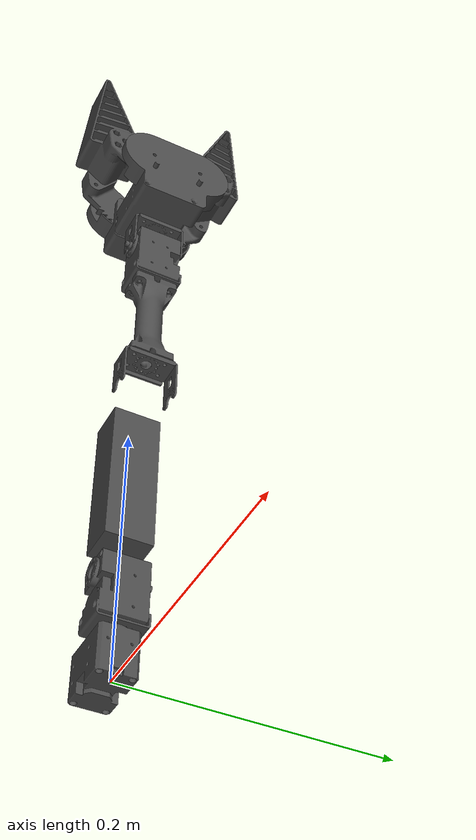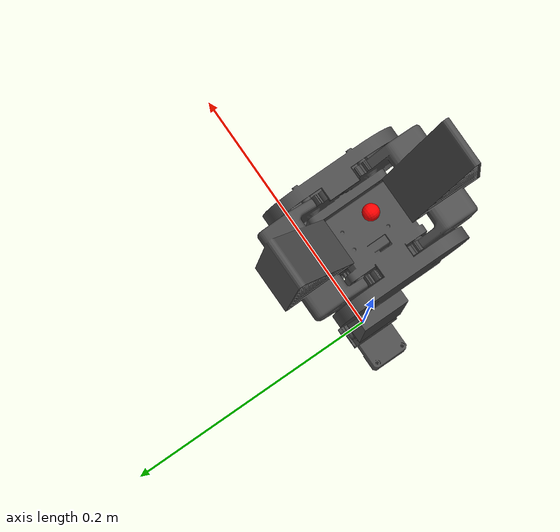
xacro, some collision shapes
<?xml version="1.0"?>

<robot name="$(arg robot_name)" xmlns:xacro="http://ros.org/wiki/xacro">
  <xacro:include filename="$(find tuda_turtlebot3_arm_description)/urdf/tuda_turtlebot3_arm.urdf.xacro" />

  <xacro:arg name="parent_link" default="base_link" />

  <link name="$(arg parent_link)" />

  <xacro:manipulator_arm_macro parent="$(arg parent_link)">
    <origin xyz="0.0 0.0 0.0" rpy="0.0 0.0 0.0" />
  </xacro:manipulator_arm_macro>
</robot>

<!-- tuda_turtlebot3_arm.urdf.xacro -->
<robot
  xmlns:controller="http://playerstage.sourceforge.net/gazebo/xmlschema/#controller"
  xmlns:interface="http://ros.org/wiki/xacro"
  xmlns:sensor="http://playerstage.sourceforge.net/gazebo/xmlschema/#sensor"
  xmlns:xacro="http://ros.org/wiki/xacro">

  <xacro:include filename="$(find tuda_turtlebot3_arm_description)/urdf/tuda_turtlebot3_arm.gazebo.xacro" />

  <xacro:property name="XM430_W350_max_effort" value="4.1" />
  <xacro:property name="XM430_W350_max_velocity" value="${46 * 2*pi/60}" />

  <xacro:property name="joint_damping" value="0.2" />
  <xacro:property name="joint_friction" value="0.5" />

  <xacro:macro name="manipulator_arm_macro" params="parent *origin">
    <joint name="arm_base" type="fixed">
      <xacro:insert_block name="origin" />
      <parent link="${parent}" />
      <child link="arm_link_1" />
    </joint>

    <link name="arm_link_1">
      <visual>
        <origin xyz="0 0.0 0.0" rpy="0.0 0.0 ${pi}" />
        <geometry>
          <mesh filename="package://tuda_turtlebot3_arm_description/meshes/arm/link0.stl" scale="0.001 0.001 0.001" />
        </geometry>
        <material name="DarkGrey">
          <color rgba="0.3 0.3 0.3 1" />
        </material>
      </visual>

      <collision>
        <origin xyz="-0.011 0 0.018" rpy="0.0 0.0 ${pi}" />
        <geometry>
          <box size="0.05 0.03 0.035" />
        </geometry>
      </collision>

      <inertial>
        <origin xyz="-0.0129 0.00024 0.01759" rpy="0.0 0.0 ${pi}" />
        <mass value="0.082" />
        <inertia ixx="48.546e-06"   ixy="-0.218e-06"    ixz="-0.416e-06"
                                    iyy="25.118e-06"    iyz="17.510e-06"
                                                        izz="4.077e-06" />
      </inertial>
    </link>

    <joint name="arm_joint_1" type="revolute">
      <origin xyz="0.0 0 0.036" rpy="0.0 0.0 ${pi}" />
      <axis xyz="0.0 0.0 1" />
      <limit lower="${-pi+0.001}" upper="${pi-0.001}" effort="${XM430_W350_max_effort}" velocity="${XM430_W350_max_velocity}" />
      <parent link="arm_link_1" />
      <child link="arm_link_2" />
      <dynamics friction="${joint_friction}" damping="${joint_damping}" />
    </joint>

    <link name="arm_link_2">
      <visual>
        <origin xyz="0 0.0 0.0" rpy="0.0 0.0 0.0" />
        <geometry>
          <mesh filename="package://tuda_turtlebot3_arm_description/meshes/arm/link1.stl" scale="0.001 0.001 0.001" />
        </geometry>
        <material name="DarkGrey">
          <color rgba="0.3 0.3 0.3 1" />
        </material>
      </visual>

      <collision>
        <origin xyz="0.0 0 0.025" rpy="0.0 0.0 0.0" />
        <geometry>
          <box size="0.03 0.04 0.055" />
        </geometry>
      </collision>

      <inertial>
        <origin xyz="0.00023 -0.00056 0.026" rpy="0.0 0.0 0.0" />
        <mass value="0.088" />
        <inertia ixx="13.346e-06"   ixy="0.224e-06"     ixz="0.323e-06"
                                    iyy="7.757e-06"     iyz="0.438e-06"
                                                        izz="14.284e-06" />
      </inertial>
    </link>

    <joint name="arm_joint_2" type="revolute">
      <origin xyz="0.0 0.0 0.0405" rpy=" ${pi/2} 0.0 ${pi}" />
      <axis xyz="0.0 0.0 1" />
      <limit lower="${-100 * pi / 180}" upper="${100 * pi / 180}" effort="${XM430_W350_max_effort}" velocity="${XM430_W350_max_velocity}" />
      <parent link="arm_link_2" />
      <child link="arm_link_3" />
      <dynamics friction="${joint_friction}" damping="${joint_damping}" />
    </joint>

    <link name="arm_link_3">
      <visual>
        <origin xyz="0.0 0.0 0.0" rpy="0.0 0.0 0.0" />
        <geometry>
          <mesh filename="package://tuda_turtlebot3_arm_description/meshes/arm/link2.stl" scale="0.001 0.001 0.001" />
        </geometry>
        <material name="DarkGrey">
          <color rgba="0.3 0.3 0.3 1" />
        </material>
      </visual>

      <collision>
        <origin xyz="0 0.078 0.0" rpy="0.0 0.0 0.0" />
        <geometry>
          <box size="0.03 0.11 0.035" />
        </geometry>
      </collision>

      <collision>
        <origin xyz="0.012 0.145 0.0" rpy="0.0 0.0 0.0" />
        <geometry>
          <box size="0.05 0.035 0.04" />
        </geometry>
      </collision>

      <collision>
        <origin xyz="0.0 0.01 0.02" rpy="0.0 0.0 0.0" />
        <geometry>
          <box size="0.03 0.04 0.0075" />
        </geometry>
      </collision>

      <collision>
        <origin xyz="0.0 0.01 -0.02" rpy="0.0 0.0 0.0" />
        <geometry>
          <box size="0.03 0.04 0.0075" />
        </geometry>
      </collision>

      <inertial>
        <origin xyz="0.00746 0.12016 0.00036" rpy="0.0 ${pi} 0.0" />
        <mass value="0.136" />
        <inertia ixx="267.630e-06"    ixy="25.927e-06"    ixz="-0.339e-06"
                                      iyy="21.769e-06"    iyz="1.571e-06"
                                                          izz="260.554e-06" />
      </inertial>
    </link>

    <joint name="arm_joint_3" type="revolute">
      <origin xyz="0.024 0.148 0.0" rpy="0.0 0.0 ${-pi/2}" />
      <axis xyz="0.0 0.0 1" />
      <limit lower="${-180 * pi / 180}" upper="${25 * pi / 180}" effort="${XM430_W350_max_effort}" velocity="${XM430_W350_max_velocity}" />
      <parent link="arm_link_3" />
      <child link="arm_link_4" />
      <dynamics friction="${joint_friction}" damping="${joint_damping}" />
    </joint>

    <link name="arm_link_4">
      <visual>
        <origin xyz="0.0 0.0 0.0" rpy="0.0 0.0 0.0" />
        <geometry>
          <mesh filename="package://tuda_turtlebot3_arm_description/meshes/arm/link3.stl" scale="0.001 0.001 0.001" />
        </geometry>
        <material name="DarkGrey">
          <color rgba="0.3 0.3 0.3 1" />
        </material>
      </visual>

      <collision>
        <origin xyz="-0.01 0.0 0.02" rpy="0.0 0.0 0.0" />
        <geometry>
          <box size="0.04 0.03 0.0075" />
        </geometry>
      </collision>

      <collision>
        <origin xyz="-0.01 0.0 -0.02" rpy="0.0 0.0 0.0" />
        <geometry>
          <box size="0.04 0.03 0.0075" />
        </geometry>
      </collision>
      <collision>
        <origin xyz="-0.09 0.0 0.0" rpy="0.0 0.0 0.0" />
        <geometry>
          <box size="0.145 0.04 0.04" />
        </geometry>
      </collision>

      <inertial>
        <origin xyz="-0.11166 0.00016 0.00038" rpy="0.0 0.0 0.0" />
        <mass value="0.127" />
        <inertia ixx="19.832e-06"   ixy="-0.793e-06"      ixz="-0.724e-06"
                                    iyy="215.338e-06"     iyz="-0.221e-06"
                                                          izz="207.743e-06" />
      </inertial>
    </link>

    <joint name="arm_joint_4" type="revolute">
      <origin xyz="-0.15 0.0 0.0" rpy="0.0 0.0 0.0" />
      <axis xyz="0.0 0.0 1" />
      <limit lower="${-95 * pi / 180}" upper="${95 * pi / 180}" effort="${XM430_W350_max_effort}" velocity="${XM430_W350_max_velocity}" />
      <parent link="arm_link_4" />
      <child link="gripper_base_link" />
      <dynamics friction="${joint_friction}" damping="${joint_damping}" />
    </joint>

    <link name="gripper_base_link">
      <visual>
        <origin xyz="0.0 0.0 0.0" rpy="0.0 0.0 0.0" />
        <geometry>
          <mesh filename="package://tuda_turtlebot3_arm_description/meshes/gripper/gripper_base.stl" scale="0.001 0.001 0.001" />
        </geometry>
        <material name="DarkGrey">
          <color rgba="0.3 0.3 0.3 1" />
        </material>
      </visual>

      <collision>
        <origin xyz="-0.01 0.0 0.02" rpy="0.0 0.0 0.0" />
        <geometry>
          <box size="0.04 0.03 0.0075" />
        </geometry>
      </collision>

      <collision>
        <origin xyz="-0.01 0.0 -0.02" rpy="0.0 0.0 0.0" />
        <geometry>
          <box size="0.04 0.03 0.0075" />
        </geometry>
      </collision>

      <collision>
        <origin xyz="-0.05 0.0 0.0" rpy="0.0 0.0 0.0" />
        <geometry>
          <box size="0.05 0.05 0.055" />
        </geometry>
      </collision>

      <collision>
        <origin xyz="-0.06 0.0325 0.0" rpy="0.0 0.0 0.0" />
        <geometry>
          <box size="0.0685 0.015 0.055" />
        </geometry>
      </collision>

      <collision>
        <origin xyz="-0.06 -0.0325 0.0" rpy="0.0 0.0 0.0" />
        <geometry>
          <box size="0.0685 0.015 0.055" />
        </geometry>
      </collision>

      <collision>
        <origin xyz="-0.06908 0.035 0.02" rpy="${pi/2} ${pi} 0.0" />
        <geometry>
          <cylinder length="0.01" radius="0.026" />
        </geometry>
      </collision>

      <collision>
        <origin xyz="-0.06908 -0.035 0.02" rpy="${pi/2} ${pi} 0.0" />
        <geometry>
          <cylinder length="0.01" radius="0.026" />
        </geometry>
      </collision>

      <collision>
        <origin xyz="-0.06908 0.035 -0.02" rpy="${-pi/2} ${pi} 0.0" />
        <geometry>
          <cylinder length="0.01" radius="0.026" />
        </geometry>
      </collision>

      <collision>
        <origin xyz="-0.06908 -0.035 -0.02" rpy="${-pi/2} ${pi} 0.0" />
        <geometry>
          <cylinder length="0.01" radius="0.026" />
        </geometry>
      </collision>

	  <collision>
        <origin xyz="-0.05408 0.0405 -0.01912" rpy="${pi/2} ${pi} 0.0" />
        <geometry>
          <cylinder length="0.007" radius="0.00205" />
        </geometry>
      </collision>

	  <collision>
        <origin xyz="-0.05408 0.0405 0.01887" rpy="${pi/2} ${pi} 0.0" />
        <geometry>
          <cylinder length="0.007" radius="0.00205" />
        </geometry>
      </collision>

      <inertial>

        <origin xyz="-0.04663 -0.00051 -0.00234" rpy="0.0 0.0 0.0" />
        <mass value="0.155" />
        <inertia ixx="114.015e-06"    ixy="17.253e-06"    ixz="-1.650e-06"
                                      iyy="70.718e-06"    iyz="0.750e-06"
                                                          izz="141.557e-06" />
      </inertial>
    </link>

    <joint name="gripper_servo_joint" type="revolute">
      <origin xyz="-0.04225 0.0 -0.016" rpy="${pi/2} 0 0.0" />
      <axis xyz="0.0 0.0 1" />
      <limit lower="-1.93" upper="1.62" effort="${XM430_W350_max_effort}" velocity="${XM430_W350_max_velocity}" />
      <parent link="gripper_base_link" />
      <child link="gripper_servo_link" />
      <dynamics friction="0" damping="0" />
    </joint>

    <link name="gripper_servo_link">
      <inertial>
        <origin xyz="0.0 0.0 0.0" rpy="0.0 0.0 0.0" />
        <mass value="0.001" />
        <inertia ixx="1.0e-07" ixy="0.0"     ixz="0.0"
                              iyy="1.0e-07"  iyz="0.0"
                                            izz="1.0e-07" />
      </inertial>

      <collision>
        <origin xyz="0 0.0 0.0275" rpy="0.0 0.0 0.0" />
        <geometry>
          <cylinder length="0.01" radius="0.01" />
        </geometry>
      </collision>
    </link>

    <!-- virtual endeffector joint -->
    <joint name="gripper_grasp" type="fixed">
      <origin xyz="-0.14 0.0 0.0" rpy="0.0 0.0 ${pi}"/>
      <parent link="gripper_base_link"/>
      <child link="gripper_grasp_link"/>
    </joint>

    <link name="gripper_grasp_link">
    <visual>
      <origin xyz="0.0 0.0 0.0" rpy="0.0 0.0 0.0"/>
      <geometry>
        <sphere radius="0.005" />
      </geometry>
      <material name="Red">
        <color rgba="1.0 0.0 0.0 1" />
      </material>
    </visual>

    <inertial>
      <origin xyz="0.0 0.0 0.0" rpy="0.0 0.0 0.0"/>
      <mass value="0.0001"/>
    <inertia ixx="1.0e-10" ixy="0.0" ixz="0.0" iyy="1.0e-10" iyz="0.0" izz="1.0e-10" />
    </inertial>
    </link>

	  <!-- gripper finger -->
    <joint name="gripper_finger_joint_1" type="continuous">
      <origin xyz="-0.06908 0.0 0.02" rpy="${pi/2} ${pi-pi/5} 0.0" />
      <axis xyz="0.0 0.0 1" />
      <limit lower="${-pi}" upper="${pi}" effort="${XM430_W350_max_effort}" velocity="${XM430_W350_max_velocity}" />
      <parent link="gripper_base_link" />
      <child link="gripper_finger_link_1" />
      <mimic joint="gripper_servo_joint" multiplier="${8 / 23}" offset="0" />
      <dynamics friction="${joint_friction}" damping="${joint_damping}" />
    </joint>

    <link name="gripper_finger_link_1">
      <visual>
        <origin xyz="0.0 0.0 0.0" rpy="0.0 0.0 0.0" />
        <geometry>
          <mesh filename="package://tuda_turtlebot3_arm_description/meshes/gripper/gripper_finger.stl" scale="-0.001 0.001 0.001" />
        </geometry>
        <material name="DarkGrey">
          <color rgba="0.3 0.3 0.3 1" />
        </material>
      </visual>

      <collision>
        <origin xyz="0 0.0 0.025" rpy="0.0 0.0 0.0" />
        <geometry>
          <cylinder length="0.01" radius="0.023" />
        </geometry>
      </collision>

      <collision>
        <origin xyz="0 0.0 -0.025" rpy="0.0 0.0 0.0" />
        <geometry>
          <cylinder length="0.01" radius="0.023" />
        </geometry>
      </collision>

      <collision>
        <origin xyz="0.045 -0.055 0.0" rpy="0.0 0.0 ${-58 * pi / 180}" />
        <geometry>
          <box size="0.095 0.005 0.03" />
        </geometry>
      </collision>

      <collision>
        <origin xyz="0.0275 -0.0725 0.0" rpy="0.0 0.0 ${-31 * pi / 180}" />
        <geometry>
          <box size="0.095 0.005 0.03" />
        </geometry>
      </collision>

      <collision>
        <origin xyz="0.005 -0.035 0.0" rpy="0.0 0.0 ${45 * pi / 180}" />
        <geometry>
          <box size="0.05 0.005 0.03" />
        </geometry>
      </collision>

      <collision>
        <origin xyz="0.0 -0.025 0.0" rpy="0.0 0.0 ${45 * pi / 180}" />
        <geometry>
          <box size="0.03 0.03 0.06" />
        </geometry>
      </collision>

      <inertial>
        <origin xyz="0.01764 -0.04373 0.0" rpy="0.0 0.0 ${90 * pi / 180}" />
        <mass value="0.029" />
        <inertia ixx="0.000025065339"   ixy="-0.000009627959" ixz="2.8255e-8"
                                        iyy="0.000022245643"  iyz="5.37e-10"
                                                              izz="0.000027220956" />
      </inertial>
    </link>

    <joint name="gripper_finger_joint_2" type="continuous">
      <origin xyz="-0.06908 0.0 -0.02" rpy="${-pi/2} ${pi+pi/5} 0.0" />
      <axis xyz="0.0 0.0 1" />
      <limit lower="${-pi}" upper="${pi}" effort="${XM430_W350_max_effort}" velocity="${XM430_W350_max_velocity}" />
      <parent link="gripper_base_link" />
      <child link="gripper_finger_link_2" />
      <mimic joint="gripper_servo_joint" multiplier="${8 / 23}" offset="0" />
      <dynamics friction="${joint_friction}" damping="${joint_damping}" />
    </joint>

    <link name="gripper_finger_link_2">
      <visual>
        <origin xyz="0.0 0.0 0.0" rpy="0.0 0.0 0.0" />
        <geometry>
          <mesh filename="package://tuda_turtlebot3_arm_description/meshes/gripper/gripper_finger.stl" scale="-0.001 0.001 0.001" />
        </geometry>
        <material name="DarkGrey">
          <color rgba="0.3 0.3 0.3 1" />
        </material>
      </visual>

      <collision>
        <origin xyz="0 0.0 0.025" rpy="0.0 0.0 0.0" />
        <geometry>
          <cylinder length="0.01" radius="0.023" />
        </geometry>
      </collision>

      <collision>
        <origin xyz="0 0.0 -0.025" rpy="0.0 0.0 0.0" />
        <geometry>
          <cylinder length="0.01" radius="0.023" />
        </geometry>
      </collision>

      <collision>
        <origin xyz="0.045 -0.055 0.0" rpy="0.0 0.0 ${- 58 * pi / 180}" />
        <geometry>
          <box size="0.095 0.005 0.03" />
        </geometry>
      </collision>

      <collision>
        <origin xyz="0.0275 -0.0725 0.0" rpy="0.0 0.0 ${-31 * pi / 180}" />
        <geometry>
          <box size="0.095 0.005 0.03" />
        </geometry>
      </collision>

      <collision>
        <origin xyz="0.005 -0.035 0.0" rpy="0.0 0.0 ${45 * pi / 180}" />
        <geometry>
          <box size="0.05 0.005 0.03" />
        </geometry>
      </collision>

      <collision>
        <origin xyz="0.0 -0.025 0.0" rpy="0.0 0.0 ${45 * pi / 180}" />
        <geometry>
          <box size="0.03 0.03 0.06" />
        </geometry>
      </collision>

      <inertial>
        <origin xyz="0.01764 -0.04373 0.0" rpy="0.0 0.0 ${90 * pi / 180}" />
        <mass value="0.029" />
        <inertia ixx="0.000025065339" ixy="-0.000009627959" ixz="2.8255e-8"
                                      iyy="0.000022245643"  iyz="5.37e-10"
                                                            izz="0.000027220956" />
      </inertial>
    </link>
  </xacro:macro>
</robot>
